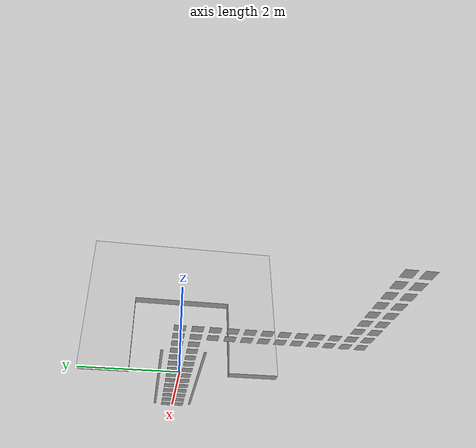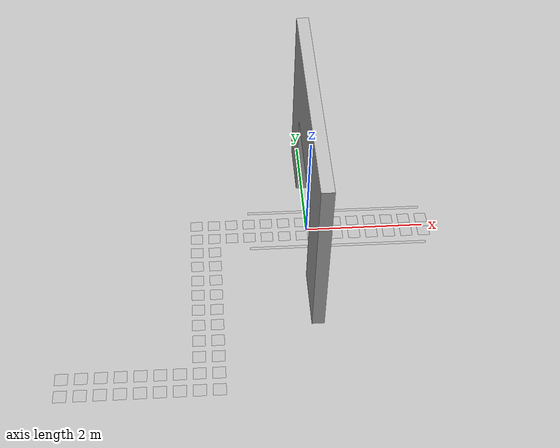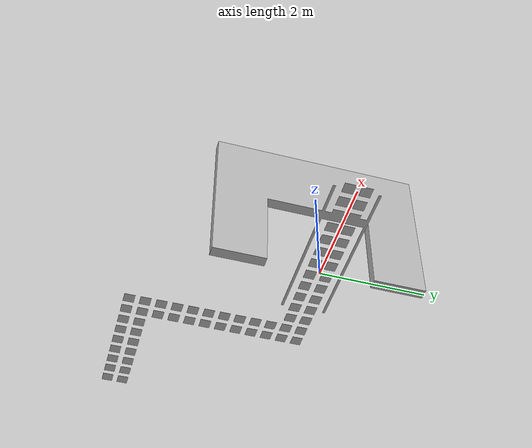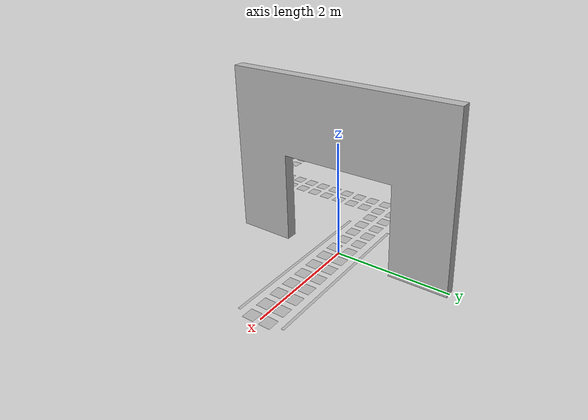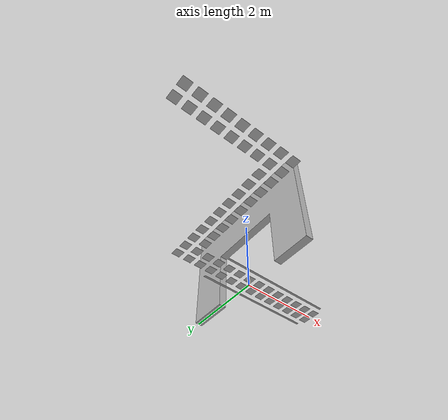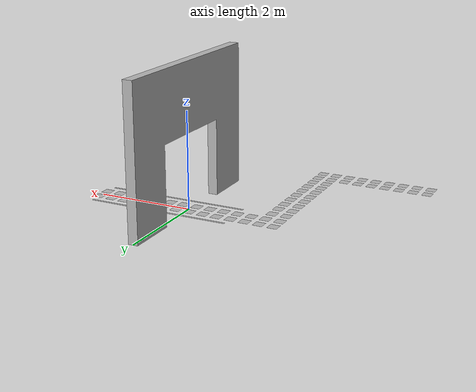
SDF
<?xml version="1.0" ?>
<sdf version="1.7">
  <model name="Wall_with_markers_big_board">
    <static>true</static>
    <pose>0 0 0 0 0 0</pose>
    <link name="link">
    <visual name="visual">
      <geometry>
        <mesh>
          <uri>model://wall_with_markers_big_board/meshes/model.dae</uri>
        </mesh>
      </geometry>
    </visual>
  </link>
</model>
</sdf>
